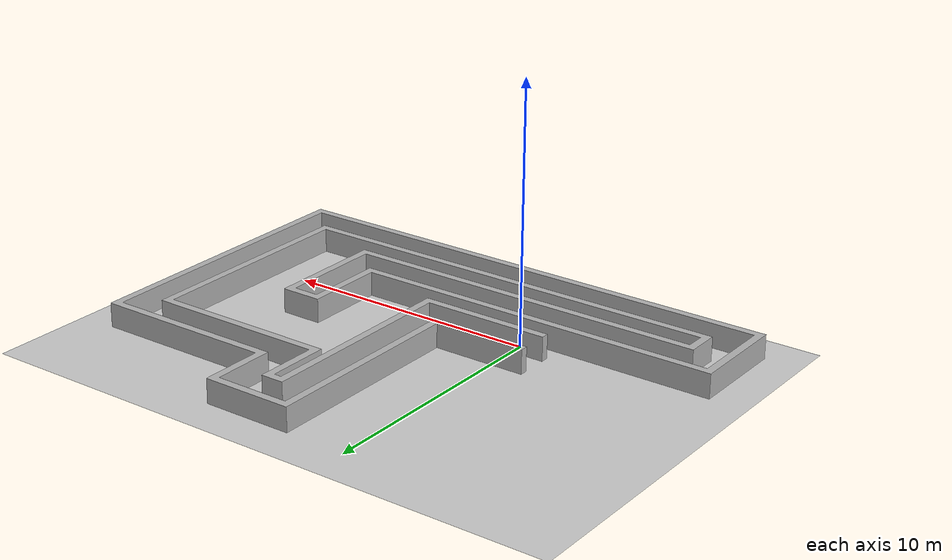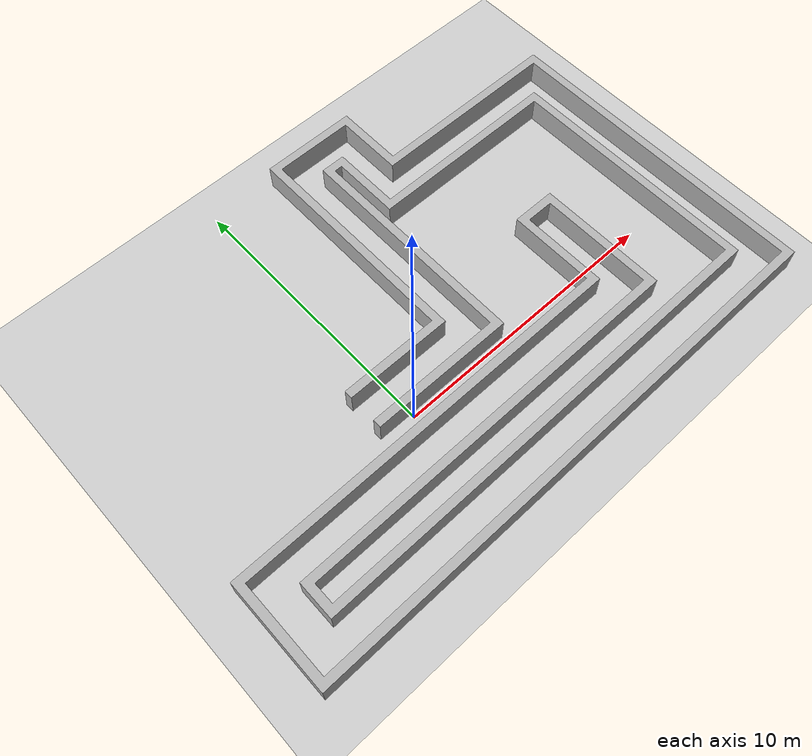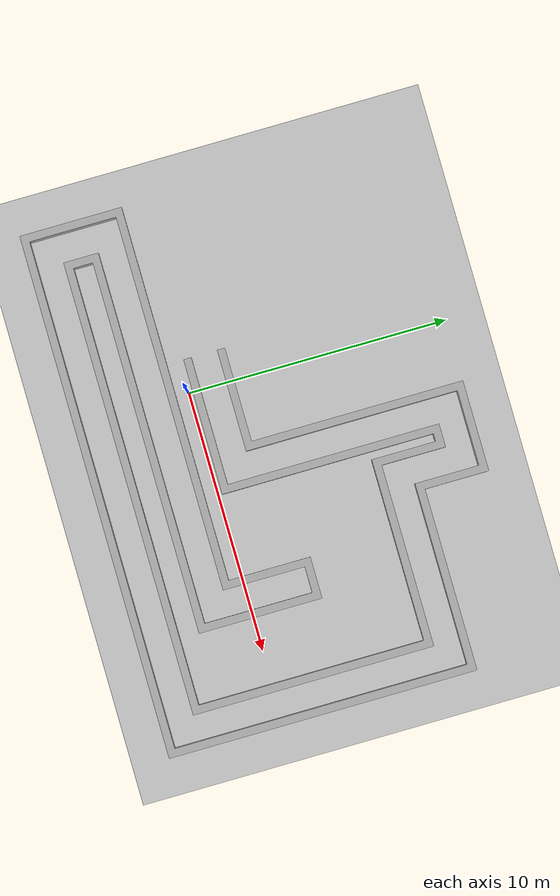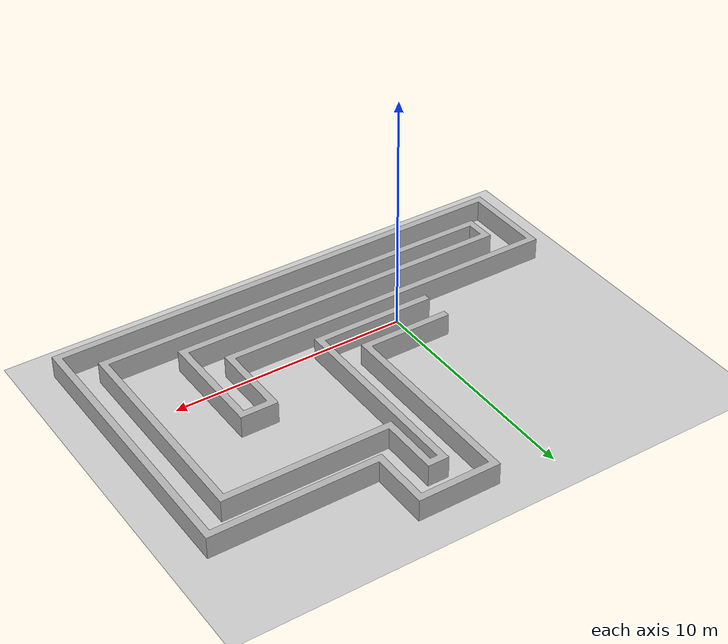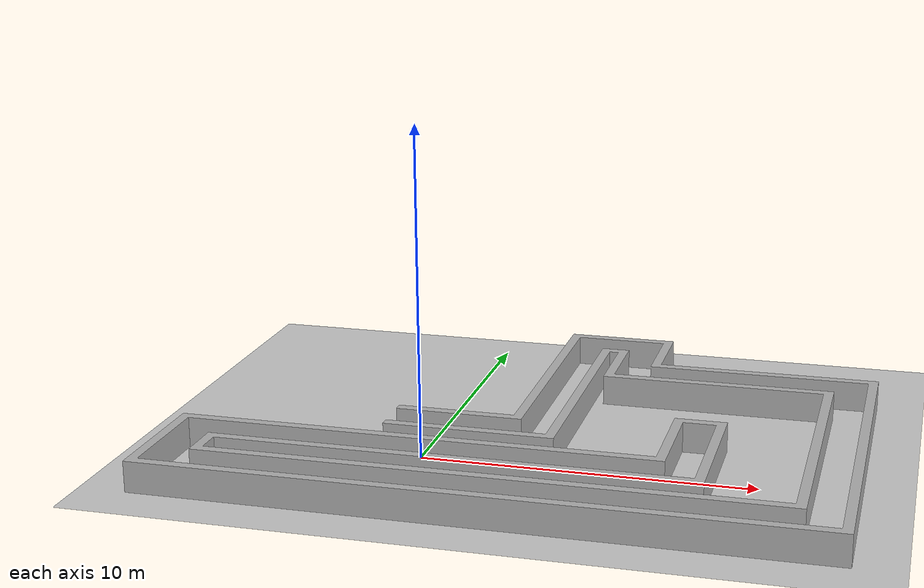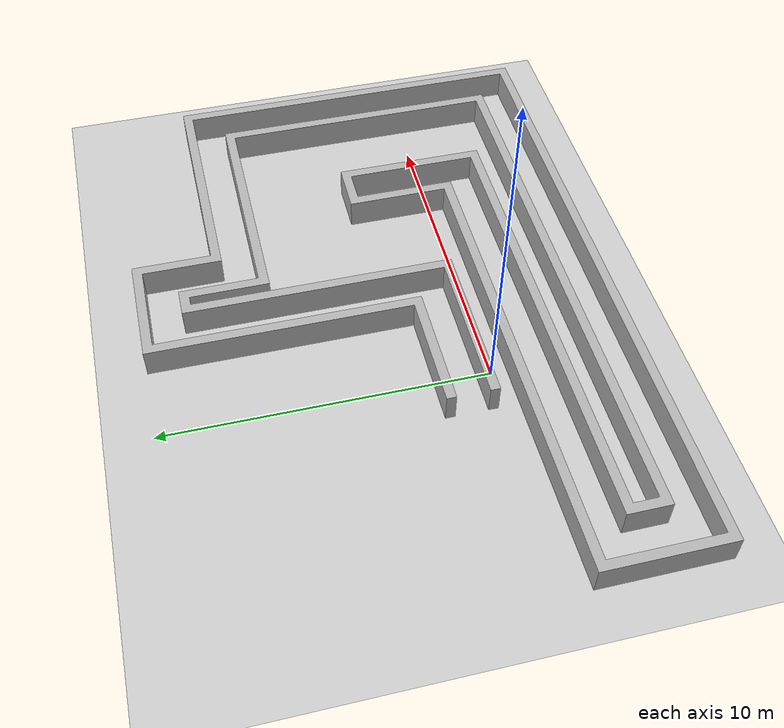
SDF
<sdf version='1.10'>
  <world name='empty'>
    <physics name='1ms' type='ignored'>
      <max_step_size>0.001</max_step_size>
      <real_time_factor>1</real_time_factor>
      <real_time_update_rate>1000</real_time_update_rate>
    </physics>
    <plugin name='gz::sim::systems::Physics' filename='gz-sim-physics-system'/>
    <plugin name='gz::sim::systems::UserCommands' filename='gz-sim-user-commands-system'/>
    <plugin name='gz::sim::systems::SceneBroadcaster' filename='gz-sim-scene-broadcaster-system'/>
    <plugin name='gz::sim::systems::Contact' filename='gz-sim-contact-system'/>
    <plugin name='gz::sim::systems::Sensors' filename='gz-sim-sensors-system'>
      <render_engine>ogre2</render_engine>
    </plugin>
    <gravity>0 0 -9.8</gravity>
    <magnetic_field>5.5645e-06 2.28758e-05 -4.23884e-05</magnetic_field>
    <atmosphere type='adiabatic'/>
    <scene>
      <ambient>0.4 0.4 0.4 1</ambient>
      <background>0.7 0.7 0.7 1</background>
      <shadows>true</shadows>
    </scene>

    <model name='ground_plane'>
      <static>true</static>
      <link name='link'>
        <collision name='collision'>
          <geometry>
            <plane>
              <normal>0 0 1</normal>
              <size>100 100</size>
            </plane>
          </geometry>
        </collision>
        <visual name='visual'>
          <geometry>
            <plane>
              <normal>0 0 1</normal>
              <size>100 100</size>
            </plane>
          </geometry>
          <material>
            <ambient>0.8 0.8 0.8 1</ambient>
            <diffuse>0.8 0.8 0.8 1</diffuse>
            <specular>0.8 0.8 0.8 1</specular>
          </material>
        </visual>
      </link>
    </model>

    <!-- MAZE: STL from Onshape -->
    <model name='maze'>
      <static>true</static>
      <pose>0 0 -1.3 0 0 0</pose>
      <link name='link'>
        <collision name='collision'>
          <geometry>
            <mesh>
              <uri>model://my_robot_normal_bringup/mesh/maze.stl</uri>
              <scale>1 1 1</scale>
            </mesh>
          </geometry>
        </collision>
        <visual name='visual'>
          <geometry>
            <mesh>
              <uri>model://my_robot_normal_bringup/mesh/maze.stl</uri>
              <scale>1 1 1</scale>
            </mesh>
          </geometry>
          <material>
            <ambient>0.5 0.5 0.5 1</ambient>
            <diffuse>0.7 0.7 0.7 1</diffuse>
            <specular>1 1 1 1</specular>
          </material>
        </visual>
      </link>
    </model>

    <light name='sun' type='directional'>
      <pose>0 0 10 0 0 0</pose>
      <cast_shadows>true</cast_shadows>
      <intensity>1</intensity>
      <direction>-0.5 0.1 -0.9</direction>
      <diffuse>0.8 0.8 0.8 1</diffuse>
      <specular>0.2 0.2 0.2 1</specular>
      <attenuation>
        <range>1000</range>
        <linear>0.01</linear>
        <constant>0.9</constant>
        <quadratic>0.001</quadratic>
      </attenuation>
    </light>
  </world>
</sdf>
